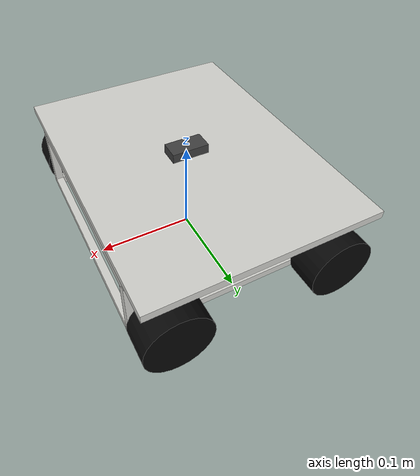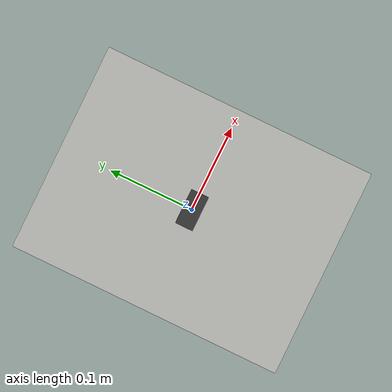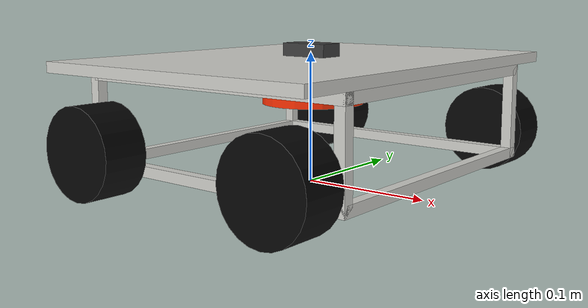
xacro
<?xml version="1.0"?>
<robot xmlns:xacro="http://www.ros.org/wiki/xacro" xmlns:gz="http://gazebosim.org/schema" name="base">
  <xacro:arg name="use_gz_ros2_control" default="false"/>
  <!-- Validated physical dimensions in metres; masses are in kilograms. -->
  <!-- Wheels and their measured centre-to-centre spacing. -->
  <xacro:property name="wheel_radius" value="0.034"/>
  <xacro:property name="wheel_width" value="0.034"/>
  <xacro:property name="wheelbase" value="0.170"/>
  <xacro:property name="track_width" value="0.275"/>
  <xacro:property name="wheel_mass" value="0.35"/>

  <!-- Hollow lower rectangular frame. -->
  <xacro:property name="lower_frame_length" value="0.232"/>
  <xacro:property name="lower_frame_width" value="0.232"/>
  <xacro:property name="lower_frame_height" value="0.074"/>
  <xacro:property name="lower_beam_width" value="0.008"/>
  <xacro:property name="lower_frame_ground_clearance" value="0.015"/>
  <xacro:property name="lower_frame_mass" value="6.0"/>

  <!-- Solid upper platform, larger than the frame. -->
  <xacro:property name="upper_platform_length" value="0.232"/>
  <xacro:property name="upper_platform_width" value="0.306"/>
  <xacro:property name="upper_platform_thickness" value="0.008"/>
  <xacro:property name="upper_platform_mass" value="2.0"/>

  <!-- IMU box and pose relative to base_link. -->
  <xacro:property name="imu_length" value="0.039"/>
  <xacro:property name="imu_width" value="0.020"/>
  <xacro:property name="imu_height" value="0.010"/>
  <xacro:property name="imu_mass" value="0.02"/>
  <xacro:property name="imu_x" value="0.0"/>
  <xacro:property name="imu_y" value="0.0"/>
  <xacro:property name="imu_z" value="0.068"/>
  <xacro:property name="imu_roll" value="0.0"/>
  <xacro:property name="imu_pitch" value="0.0"/>
  <!-- O firmware já entrega X para frente, Y para esquerda e Z para cima. -->
  <xacro:property name="imu_yaw" value="0.0"/>

  <!-- The single central orange/black LiDAR. -->
  <xacro:property name="lidar_body_length" value="0.078"/>
  <xacro:property name="lidar_body_width" value="0.078"/>
  <xacro:property name="lidar_body_height" value="0.041"/>
  <xacro:property name="lidar_orange_radius" value="0.039"/>
  <xacro:property name="lidar_orange_height" value="0.017"/>
  <xacro:property name="lidar_mass" value="0.12"/>
  <xacro:property name="lidar_center_x" value="0.002"/>
  <xacro:property name="lidar_center_y" value="0.0"/>
  <xacro:property name="lidar_center_height_above_ground" value="0.07"/>
  <!-- O LiDAR está montado invertido: 180° em X preserva frente/trás e
       troca direita/esquerda no plano da varredura. -->
  <xacro:property name="lidar_roll" value="${pi}"/>
  <!-- Correção atual de montagem: aproximadamente 3,4° à esquerda do eixo
       frontal da base. -->
  <xacro:property name="lidar_yaw" value="0.06"/>

  <!-- Derived Z positions, relative to base_link at wheel-axle height. -->
  <xacro:property name="lower_bottom_z"
    value="${lower_frame_ground_clearance - wheel_radius}"/>
  <xacro:property name="lower_top_z"
    value="${lower_bottom_z + lower_frame_height}"/>
  <xacro:property name="upper_platform_z"
    value="${lower_top_z + upper_platform_thickness / 2.0}"/>

  <material name="base_off_white"><color rgba="0.82 0.82 0.80 1"/></material>
  <material name="wheel_black"><color rgba="0.03 0.03 0.03 1"/></material>
  <material name="sensor_gray"><color rgba="0.25 0.25 0.25 1"/></material>
  <material name="lidar_orange"><color rgba="1.0 0.20 0.02 1"/></material>
  <material name="lidar_body_black"><color rgba="0.01 0.01 0.01 1"/></material>

  <link name="base_footprint"/>
  <joint name="base_footprint_joint" type="fixed">
    <parent link="base_footprint"/>
    <child link="base_link"/>
    <origin xyz="0 0 ${wheel_radius}"/>
  </joint>

  <!-- Adds one rectangular member to the visual and collision geometry of a link. -->
  <xacro:macro name="frame_member" params="x y z size_x size_y size_z">
    <visual>
      <origin xyz="${x} ${y} ${z}"/>
      <geometry><box size="${size_x} ${size_y} ${size_z}"/></geometry>
      <material name="base_off_white"/>
    </visual>
    <collision>
      <origin xyz="${x} ${y} ${z}"/>
      <geometry><box size="${size_x} ${size_y} ${size_z}"/></geometry>
    </collision>
  </xacro:macro>

  <link name="base_link">
    <!-- Four lower members. -->
    <xacro:frame_member x="0" y="${lower_frame_width / 2.0 - lower_beam_width / 2.0}"
      z="${lower_bottom_z + lower_beam_width / 2.0}"
      size_x="${lower_frame_length}" size_y="${lower_beam_width}" size_z="${lower_beam_width}"/>
    <xacro:frame_member x="0" y="${-lower_frame_width / 2.0 + lower_beam_width / 2.0}"
      z="${lower_bottom_z + lower_beam_width / 2.0}"
      size_x="${lower_frame_length}" size_y="${lower_beam_width}" size_z="${lower_beam_width}"/>
    <xacro:frame_member x="${lower_frame_length / 2.0 - lower_beam_width / 2.0}" y="0"
      z="${lower_bottom_z + lower_beam_width / 2.0}"
      size_x="${lower_beam_width}" size_y="${lower_frame_width}" size_z="${lower_beam_width}"/>
    <xacro:frame_member x="${-lower_frame_length / 2.0 + lower_beam_width / 2.0}" y="0"
      z="${lower_bottom_z + lower_beam_width / 2.0}"
      size_x="${lower_beam_width}" size_y="${lower_frame_width}" size_z="${lower_beam_width}"/>

    <!-- Four upper members. -->
    <xacro:frame_member x="0" y="${lower_frame_width / 2.0 - lower_beam_width / 2.0}"
      z="${lower_top_z - lower_beam_width / 2.0}"
      size_x="${lower_frame_length}" size_y="${lower_beam_width}" size_z="${lower_beam_width}"/>
    <xacro:frame_member x="0" y="${-lower_frame_width / 2.0 + lower_beam_width / 2.0}"
      z="${lower_top_z - lower_beam_width / 2.0}"
      size_x="${lower_frame_length}" size_y="${lower_beam_width}" size_z="${lower_beam_width}"/>
    <xacro:frame_member x="${lower_frame_length / 2.0 - lower_beam_width / 2.0}" y="0"
      z="${lower_top_z - lower_beam_width / 2.0}"
      size_x="${lower_beam_width}" size_y="${lower_frame_width}" size_z="${lower_beam_width}"/>
    <xacro:frame_member x="${-lower_frame_length / 2.0 + lower_beam_width / 2.0}" y="0"
      z="${lower_top_z - lower_beam_width / 2.0}"
      size_x="${lower_beam_width}" size_y="${lower_frame_width}" size_z="${lower_beam_width}"/>

    <!-- Four vertical corner columns. -->
    <xacro:frame_member
      x="${lower_frame_length / 2.0 - lower_beam_width / 2.0}"
      y="${lower_frame_width / 2.0 - lower_beam_width / 2.0}"
      z="${lower_bottom_z + lower_frame_height / 2.0}"
      size_x="${lower_beam_width}" size_y="${lower_beam_width}" size_z="${lower_frame_height}"/>
    <xacro:frame_member
      x="${lower_frame_length / 2.0 - lower_beam_width / 2.0}"
      y="${-lower_frame_width / 2.0 + lower_beam_width / 2.0}"
      z="${lower_bottom_z + lower_frame_height / 2.0}"
      size_x="${lower_beam_width}" size_y="${lower_beam_width}" size_z="${lower_frame_height}"/>
    <xacro:frame_member
      x="${-lower_frame_length / 2.0 + lower_beam_width / 2.0}"
      y="${lower_frame_width / 2.0 - lower_beam_width / 2.0}"
      z="${lower_bottom_z + lower_frame_height / 2.0}"
      size_x="${lower_beam_width}" size_y="${lower_beam_width}" size_z="${lower_frame_height}"/>
    <xacro:frame_member
      x="${-lower_frame_length / 2.0 + lower_beam_width / 2.0}"
      y="${-lower_frame_width / 2.0 + lower_beam_width / 2.0}"
      z="${lower_bottom_z + lower_frame_height / 2.0}"
      size_x="${lower_beam_width}" size_y="${lower_beam_width}" size_z="${lower_frame_height}"/>

    <inertial>
      <!-- Bounding-box approximation until mass and centre of mass are measured. -->
      <origin xyz="0 0 ${lower_bottom_z + lower_frame_height / 2.0}"/>
      <mass value="${lower_frame_mass}"/>
      <inertia
        ixx="${lower_frame_mass * (lower_frame_width * lower_frame_width + lower_frame_height * lower_frame_height) / 12.0}"
        ixy="0" ixz="0"
        iyy="${lower_frame_mass * (lower_frame_length * lower_frame_length + lower_frame_height * lower_frame_height) / 12.0}"
        iyz="0"
        izz="${lower_frame_mass * (lower_frame_length * lower_frame_length + lower_frame_width * lower_frame_width) / 12.0}"/>
    </inertial>
  </link>

  <link name="upper_platform_link">
    <visual>
      <geometry><box size="${upper_platform_length} ${upper_platform_width} ${upper_platform_thickness}"/></geometry>
      <material name="base_off_white"/>
    </visual>
    <collision>
      <geometry><box size="${upper_platform_length} ${upper_platform_width} ${upper_platform_thickness}"/></geometry>
    </collision>
    <inertial>
      <mass value="${upper_platform_mass}"/>
      <inertia
        ixx="${upper_platform_mass * (upper_platform_width * upper_platform_width + upper_platform_thickness * upper_platform_thickness) / 12.0}"
        ixy="0" ixz="0"
        iyy="${upper_platform_mass * (upper_platform_length * upper_platform_length + upper_platform_thickness * upper_platform_thickness) / 12.0}"
        iyz="0"
        izz="${upper_platform_mass * (upper_platform_length * upper_platform_length + upper_platform_width * upper_platform_width) / 12.0}"/>
    </inertial>
  </link>
  <joint name="upper_platform_joint" type="fixed">
    <parent link="base_link"/>
    <child link="upper_platform_link"/>
    <origin xyz="0 0 ${upper_platform_z}"/>
  </joint>

  <xacro:macro name="mecanum_wheel" params="prefix x y">
    <link name="${prefix}_wheel_link">
      <visual>
        <origin rpy="${pi / 2.0} 0 0"/>
        <geometry><cylinder radius="${wheel_radius}" length="${wheel_width}"/></geometry>
        <material name="wheel_black"/>
      </visual>
      <collision>
        <origin rpy="${pi / 2.0} 0 0"/>
        <geometry><cylinder radius="${wheel_radius}" length="${wheel_width}"/></geometry>
      </collision>
      <inertial>
        <mass value="${wheel_mass}"/>
        <inertia ixx="${wheel_mass * (3 * wheel_radius * wheel_radius + wheel_width * wheel_width) / 12.0}"
          ixy="0" ixz="0" iyy="${wheel_mass * wheel_radius * wheel_radius / 2.0}"
          iyz="0" izz="${wheel_mass * (3 * wheel_radius * wheel_radius + wheel_width * wheel_width) / 12.0}"/>
      </inertial>
    </link>
    <joint name="${prefix}_wheel_joint" type="continuous">
      <parent link="base_link"/>
      <child link="${prefix}_wheel_link"/>
      <origin xyz="${x} ${y} 0"/>
      <axis xyz="0 1 0"/>
      <dynamics damping="0.01" friction="0.01"/>
    </joint>
  </xacro:macro>

  <xacro:mecanum_wheel prefix="front_left" x="${wheelbase / 2.0}" y="${track_width / 2.0}"/>
  <xacro:mecanum_wheel prefix="front_right" x="${wheelbase / 2.0}" y="${-track_width / 2.0}"/>
  <xacro:mecanum_wheel prefix="rear_left" x="${-wheelbase / 2.0}" y="${track_width / 2.0}"/>
  <xacro:mecanum_wheel prefix="rear_right" x="${-wheelbase / 2.0}" y="${-track_width / 2.0}"/>

  <!-- Anisotropic 45 degree contact models the free rollers of each
       mecanum wheel while ros2_control still drives the real four wheel joints. -->
  <xacro:macro name="mecanum_contact" params="wheel direction_x direction_y">
    <gazebo reference="${wheel}_wheel_link">
      <collision>
        <surface><friction><ode>
          <mu>1.5</mu><mu2>0.02</mu2>
          <fdir1 gz:expressed_in="base_footprint">${direction_x} ${direction_y} 0</fdir1>
        </ode></friction></surface>
      </collision>
    </gazebo>
  </xacro:macro>
  <xacro:if value="$(arg use_gz_ros2_control)">
    <xacro:mecanum_contact wheel="front_left" direction_x="1" direction_y="-1"/>
    <xacro:mecanum_contact wheel="front_right" direction_x="1" direction_y="1"/>
    <xacro:mecanum_contact wheel="rear_left" direction_x="1" direction_y="1"/>
    <xacro:mecanum_contact wheel="rear_right" direction_x="1" direction_y="-1"/>
  </xacro:if>

  <link name="imu_link">
    <visual>
      <geometry><box size="${imu_length} ${imu_width} ${imu_height}"/></geometry>
      <material name="sensor_gray"/>
    </visual>
    <collision>
      <geometry><box size="${imu_length} ${imu_width} ${imu_height}"/></geometry>
    </collision>
    <inertial>
      <mass value="${imu_mass}"/>
      <inertia
        ixx="${imu_mass * (imu_width * imu_width + imu_height * imu_height) / 12.0}"
        ixy="0" ixz="0"
        iyy="${imu_mass * (imu_length * imu_length + imu_height * imu_height) / 12.0}"
        iyz="0"
        izz="${imu_mass * (imu_length * imu_length + imu_width * imu_width) / 12.0}"/>
    </inertial>
  </link>
  <joint name="imu_joint" type="fixed">
    <parent link="base_link"/><child link="imu_link"/>
    <origin xyz="${imu_x} ${imu_y} ${imu_z}"
      rpy="${imu_roll} ${imu_pitch} ${imu_yaw}"/>
  </joint>

  <link name="lidar_front_link">
    <!-- The link origin is at the orange scanner centre. -->
    <visual>
      <geometry><cylinder radius="${lidar_orange_radius}" length="${lidar_orange_height}"/></geometry>
      <material name="lidar_orange"/>
    </visual>
    <collision>
      <geometry><cylinder radius="${lidar_orange_radius}" length="${lidar_orange_height}"/></geometry>
    </collision>
    <inertial>
      <!-- Bounding-box approximation until the LiDAR centre of mass is measured. -->
      <origin xyz="0 0 ${-(lidar_orange_height + lidar_body_height) / 2.0}"/>
      <mass value="${lidar_mass}"/>
      <inertia
        ixx="${lidar_mass * (lidar_body_width * lidar_body_width + (lidar_body_height + lidar_orange_height) * (lidar_body_height + lidar_orange_height)) / 12.0}"
        ixy="0" ixz="0"
        iyy="${lidar_mass * (lidar_body_length * lidar_body_length + (lidar_body_height + lidar_orange_height) * (lidar_body_height + lidar_orange_height)) / 12.0}"
        iyz="0"
        izz="${lidar_mass * (lidar_body_length * lidar_body_length + lidar_body_width * lidar_body_width) / 12.0}"/>
    </inertial>
  </link>
  <joint name="lidar_front_joint" type="fixed">
    <parent link="base_link"/><child link="lidar_front_link"/>
    <origin xyz="${lidar_center_x} ${lidar_center_y} ${lidar_center_height_above_ground - wheel_radius}"
      rpy="${lidar_roll} 0 ${lidar_yaw}"/>
  </joint>

  <!-- Separate component link prevents RViz from reusing the orange material
       on the black body. Both links still represent one physical LiDAR. -->

  <ros2_control name="CBRMecanumSystem" type="system">
    <hardware>
      <xacro:if value="$(arg use_gz_ros2_control)">
        <plugin>gz_ros2_control/GazeboSimSystem</plugin>
      </xacro:if>
      <xacro:unless value="$(arg use_gz_ros2_control)">
        <plugin>base_hardware_interface/MariolaSystem</plugin>
        <param name="state_topic">/base_hardware/raw_joint_states</param>
        <param name="command_topic">/base_hardware/command_velocities</param>
        <param name="max_wheel_velocity_rad_s">11.0</param>
        <param name="state_timeout_sec">1.50</param>
      </xacro:unless>
    </hardware>
    <xacro:macro name="wheel_control" params="name">
      <joint name="${name}_wheel_joint">
        <command_interface name="velocity"/>
        <state_interface name="position"/>
        <state_interface name="velocity"/>
      </joint>
    </xacro:macro>
    <xacro:wheel_control name="front_left"/>
    <xacro:wheel_control name="front_right"/>
    <xacro:wheel_control name="rear_left"/>
    <xacro:wheel_control name="rear_right"/>
  </ros2_control>
</robot>
